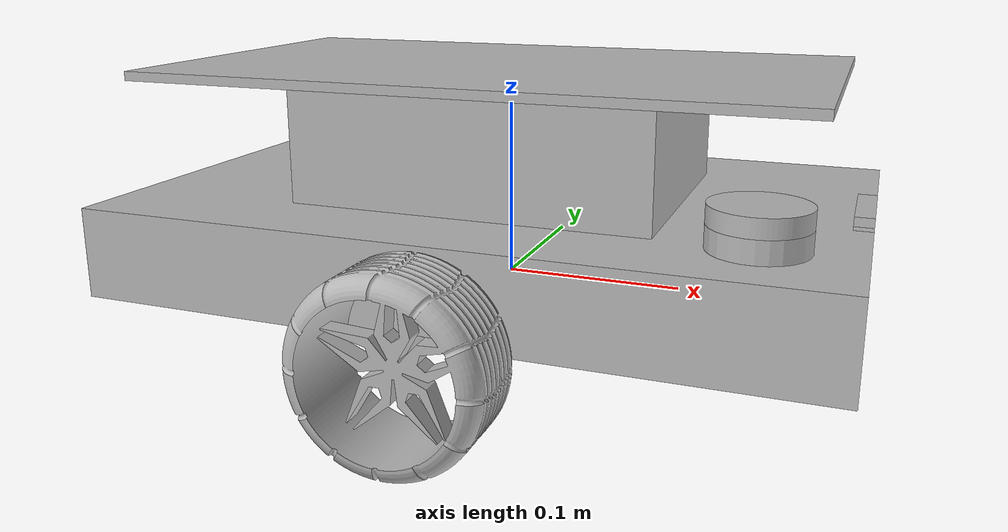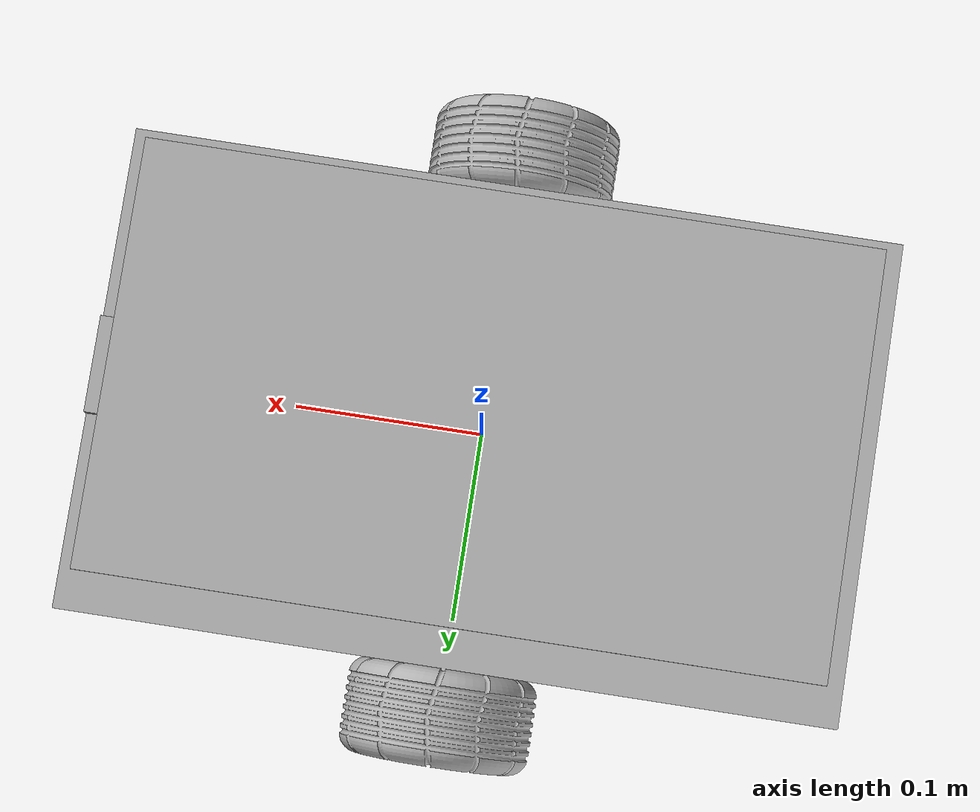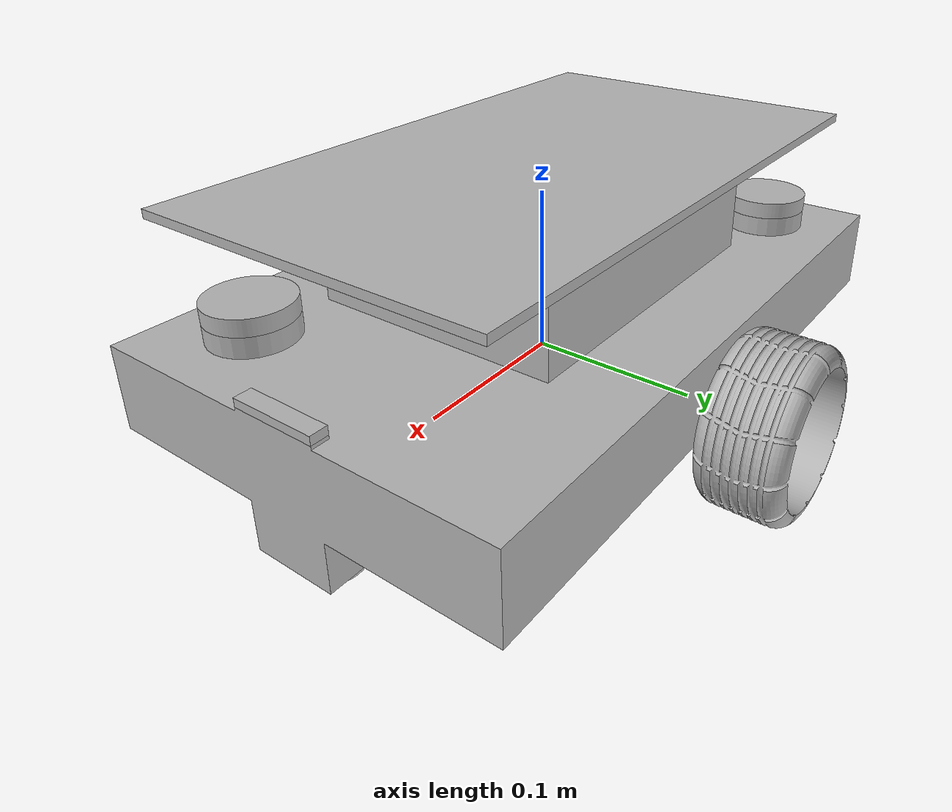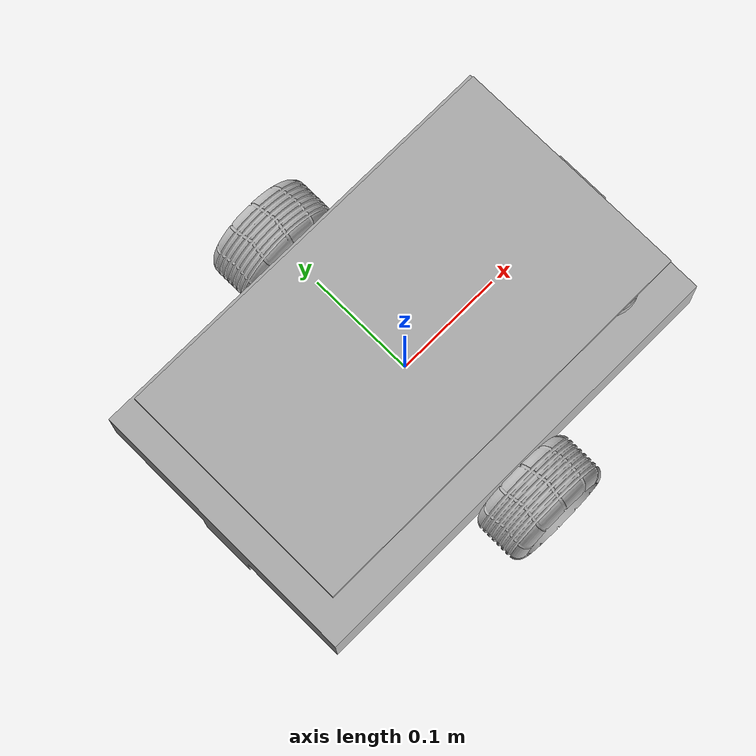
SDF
<?xml version="1.0" ?>
<sdf version="1.9">
  <model name="load_250_v33">
    <link name="base_link">
      <inertial>
        <mass>0.0001</mass>
        <inertia>
          <ixx>1e-09</ixx>
          <ixy>0</ixy>
          <ixz>0</ixz>
          <iyy>1e-09</iyy>
          <iyz>0</iyz>
          <izz>1e-09</izz>
        </inertia>
      </inertial>
    </link>

    <link name="froller_1">
      <pose relative_to="__model__">0.175 0.0 -0.03 0.0 -0.0 0.0</pose>
      <inertial>
        <mass>0.2630560248605853</mass>
        <inertia>
          <ixx>4.20889639776937e-05</ixx>
          <ixy>0.0</ixy>
          <ixz>2.168404344971009e-19</ixz>
          <iyy>4.20889639776937e-05</iyy>
          <iyz>0.0</iyz>
          <izz>4.20889639776937e-05</izz>
        </inertia>
      </inertial>
      <visual name="froller_1__froller_visual">
        <geometry>
          <mesh>
            <scale>0.01 0.01 0.01</scale>
            <uri>meshes/froller_1/froller_visual.obj</uri>
          </mesh>
        </geometry>
      </visual>
      <collision name="froller_1__froller_collision">
        <pose relative_to="__model__">0.175 0.0 -0.03 -0.0 -1.5707963267948966 0</pose>
        <geometry>
          <sphere>
            <radius>0.02</radius>
          </sphere>
        </geometry>
        <surface>
          <friction>
            <torsional>
              <coefficient>0.0</coefficient>
            </torsional>
            <ode>
              <mu>0.0</mu>
              <mu2>0.0</mu2>
            </ode>
            <bullet>
              <friction>0.0</friction>
              <friction2>0.0</friction2>
              <rolling_friction>0.0</rolling_friction>
            </bullet>
          </friction>
        </surface>
      </collision>
    </link>
    <link name="imu_1">
      <pose relative_to="__model__">0.0 0.0 0.025 0.0 -0.0 0.0</pose>
      <inertial>
        <pose>0.0 0.0 0.010000000000000002 0.0 -0.0 0.0</pose>
        <mass>0.2355</mass>
        <inertia>
          <ixx>2.551249999999995e-05</ixx>
          <ixy>0.0</ixy>
          <ixz>0.0</ixz>
          <iyy>5.6912499999999954e-05</iyy>
          <iyz>0.0</iyz>
          <izz>6.672499999999997e-05</izz>
        </inertia>
      </inertial>
      <visual name="imu_1__imu_visual">
        <geometry>
          <mesh>
            <scale>0.01 0.01 0.01</scale>
            <uri>meshes/imu_1/imu_visual.obj</uri>
          </mesh>
        </geometry>
      </visual>
      <collision name="imu_1__imu_collision">
        <pose relative_to="__model__">0.0 0.0 0.035 -0.0 -1.5707963267948966 0</pose>
        <geometry>
          <box>
            <size>0.02 0.03 0.05</size>
          </box>
        </geometry>
      </collision>
    </link>
    <link name="broller_1">
      <pose relative_to="__model__">-0.175 0.0 -0.03 0.0 -0.0 0.0</pose>
      <inertial>
        <mass>0.2630560248605853</mass>
        <inertia>
          <ixx>4.20889639776937e-05</ixx>
          <ixy>0.0</ixy>
          <ixz>-2.168404344971009e-19</ixz>
          <iyy>4.20889639776937e-05</iyy>
          <iyz>0.0</iyz>
          <izz>4.20889639776937e-05</izz>
        </inertia>
      </inertial>
      <visual name="broller_1__broller_visual">
        <geometry>
          <mesh>
            <scale>0.01 0.01 0.01</scale>
            <uri>meshes/broller_1/broller_visual.obj</uri>
          </mesh>
        </geometry>
      </visual>
      <collision name="broller_1__broller_collision">
        <pose relative_to="__model__">-0.175 0.0 -0.03 -0.0 -1.5707963267948966 0</pose>
        <geometry>
          <box>
            <size>0.04 0.04 0.04</size>
          </box>
        </geometry>
        <surface>
          <friction>
            <torsional>
              <coefficient>0.0</coefficient>
            </torsional>
            <ode>
              <mu>0.0</mu>
              <mu2>0.0</mu2>
            </ode>
            <bullet>
              <friction>0.0</friction>
              <friction2>0.0</friction2>
              <rolling_friction>0.0</rolling_friction>
            </bullet>
          </friction>
        </surface>
      </collision>
    </link>
    <link name="platform_1">
      <pose relative_to="__model__">0.0 0.0 0.055 0.0 -0.0 6.123233995736766e-17</pose>
      <inertial>
        <pose>1.8256230444553304e-11 0.0 0.039618976470643864 0.0 -0.0 -6.123233995736766e-17</pose>
        <mass>11.533219999999998</mass>
        <inertia>
          <ixx>0.024765548801522416</ixx>
          <ixy>1.684427072887525e-11</ixy>
          <ixz>-5.238784181586978e-12</ixz>
          <iyy>0.05554422130152241</iyy>
          <iyz>1.448607473321317e-10</iyz>
          <izz>0.06986293283333335</izz>
        </inertia>
      </inertial>
      <visual name="platform_1__platform_visual">
        <geometry>
          <mesh>
            <scale>0.01 0.01 0.01</scale>
            <uri>meshes/platform_1/platform_visual.obj</uri>
          </mesh>
        </geometry>
      </visual>
      <collision name="platform_1__platform_collision">
        <pose relative_to="__model__">0.0 0.0 0.08850000629013424 -0.0 -1.5707963267948966 0</pose>
        <geometry>
          <box>
            <size>0.06700001258026848 0.21000000000000005 0.360000025160537</size>
          </box>
        </geometry>
      </collision>
    </link>
    <link name="camera_1">
      <pose relative_to="__model__">0.195 0.0 0.05199999999999999 0.0 -0.0 0.0</pose>
      <inertial>
        <pose>0.0 0.0 0.0025000000000000022 0.0 -0.0 0.0</pose>
        <mass>0.019624999999999997</mass>
        <inertia>
          <ixx>4.129427083333333e-06</ixx>
          <ixy>0.0</ixy>
          <ixz>0.0</ixz>
          <iyy>2.0442708333317638e-07</iyy>
          <iyz>0.0</iyz>
          <izz>4.252083333333343e-06</izz>
        </inertia>
      </inertial>
      <visual name="camera_1__camera_visual">
        <geometry>
          <mesh>
            <scale>0.01 0.01 0.01</scale>
            <uri>meshes/camera_1/camera_visual.obj</uri>
          </mesh>
        </geometry>
      </visual>
      <collision name="camera_1__camera_collision">
        <pose relative_to="__model__">0.195 0.0 0.05449999999999999 -0.0 -1.5707963267948966 0</pose>
        <geometry>
          <box>
            <size>0.005 0.05 0.01</size>
          </box>
        </geometry>
      </collision>
    </link>
    <link name="rwheel_1">
      <pose relative_to="__model__">0.0 -0.145 0.0 0.0 -0.0 1.0145104319789719e-51</pose>
      <inertial>
        <pose>-3.872152868763962e-07 -0.0050002387848986085 -5.898795480966115e-06 0.0 -0.0 -1.0145104319789719e-51</pose>
        <mass>1.0452977986041356</mass>
        <inertia>
          <ixx>0.0011276214981046917</ixx>
          <ixy>-3.9380700690467983e-10</ixy>
          <ixz>6.493558753287392e-08</ixz>
          <iyy>0.0019158393483540905</iyy>
          <iyz>-5.260724932004131e-09</iyz>
          <izz>0.0011276094071435289</izz>
        </inertia>
      </inertial>
      <visual name="rwheel_1__rwheel_visual">
        <geometry>
          <mesh>
            <scale>0.01 0.01 0.01</scale>
            <uri>meshes/rwheel_1/rwheel_visual.obj</uri>
          </mesh>
        </geometry>
      </visual>
      <collision name="rwheel_1__rwheel_collision">
        <pose relative_to="__model__">0.0 -0.15 0.0 -0.0 -1.5707963267948966 0</pose>
        <geometry>
          <sphere>
            <radius>0.05</radius>
          </sphere>
        </geometry>
        <surface>
          <friction>
            <torsional>
              <coefficient>0.0</coefficient>
            </torsional>
            <ode>
              <mu>0.8</mu>
              <mu2>0.8</mu2>
            </ode>
            <bullet>
              <friction>0.8</friction>
              <friction2>0.8</friction2>
              <rolling_friction>0.01</rolling_friction>
            </bullet>
          </friction>
        </surface>
      </collision>
    </link>
    <link name="flidar_1">
      <pose relative_to="__model__">0.15 -0.075 0.06199999999999999 0.0 -0.0 0.0</pose>
      <inertial>
        <pose>2.7755575615628914e-17 -1.3877787807814457e-17 0.0049999999999999975 0.0 -0.0 0.0</pose>
        <mass>0.1541343895667492</mass>
        <inertia>
          <ixx>2.536795161619306e-05</ixx>
          <ixy>-2.168404344971009e-19</ixy>
          <ixz>4.336808689942018e-19</ixz>
          <iyy>2.536795161619306e-05</iyy>
          <iyz>0.0</iyz>
          <izz>4.816699673960718e-05</izz>
        </inertia>
      </inertial>
      <visual name="flidar_1__flidar_visual">
        <geometry>
          <mesh>
            <scale>0.01 0.01 0.01</scale>
            <uri>meshes/flidar_1/flidar_visual.obj</uri>
          </mesh>
        </geometry>
      </visual>
      <collision name="flidar_1__flidar_collision">
        <pose relative_to="__model__">0.15 -0.075 0.06699999999999999 -0.0 -1.5707963267948966 0</pose>
        <geometry>
          <box>
            <size>0.01 0.05 0.05</size>
          </box>
        </geometry>
      </collision>
      <sensor name='gpu_lidar_1' type='gpu_lidar'>
        <pose>0.0 0.0 0.05 0.0 -0.0 0.0</pose>
        <topic>scan</topic>
        <ignition_frame_id>load_250_v33/flidar_1</ignition_frame_id>
        <update_rate>10</update_rate>
        <lidar>
          <scan>
            <horizontal>
              <samples>270</samples>
              <resolution>1</resolution>
              <min_angle>-3.0</min_angle>
              <max_angle>1.396263</max_angle>
            </horizontal>
            <vertical>
              <samples>1</samples>
              <resolution>1</resolution>
              <min_angle>0.0</min_angle>
              <max_angle>0.0</max_angle>
            </vertical>
          </scan>
          <range>
            <min>0.3</min>
            <max>10.0</max>
            <resolution>0.01</resolution>
          </range>
        </lidar>
        <visualize>true</visualize>
      </sensor>
    </link>
    <link name="blidar_1">
      <pose relative_to="__model__">-0.15 0.075 0.06199999999999999 0.0 -0.0 0.0</pose>
      <inertial>
        <pose>0.0 0.0 0.0049999999999999975 0.0 -0.0 0.0</pose>
        <mass>0.15413438956674944</mass>
        <inertia>
          <ixx>2.536795161619306e-05</ixx>
          <ixy>0.0</ixy>
          <ixz>0.0</ixz>
          <iyy>2.5367951616194796e-05</iyy>
          <iyz>0.0</iyz>
          <izz>4.816699673960891e-05</izz>
        </inertia>
      </inertial>
      <visual name="blidar_1__blidar_visual">
        <geometry>
          <mesh>
            <scale>0.01 0.01 0.01</scale>
            <uri>meshes/blidar_1/blidar_visual.obj</uri>
          </mesh>
        </geometry>
      </visual>
      <collision name="blidar_1__blidar_collision">
        <pose relative_to="__model__">-0.15 0.075 0.06699999999999999 -0.0 -1.5707963267948966 0</pose>
        <geometry>
          <box>
            <size>0.01 0.05000000000000004 0.05000000000000002</size>
          </box>
        </geometry>
      </collision>
    </link>
    <link name="lwheel_1">
      <pose relative_to="__model__">0.0 0.145 0.0 -1.7931687772763235e-38 -0.0 -7.350647110176754e-36</pose>
      <inertial>
        <pose>-3.8721528699592e-07 0.0049997612151014 -5.898795481025863e-06 1.7931687772763235e-38 -1.3180950890745391e-73 7.350647110176754e-36</pose>
        <mass>1.0452977986041383</mass>
        <inertia>
          <ixx>0.0011276214981046986</ixx>
          <ixy>-3.938070089562201e-10</ixy>
          <ixz>6.493558752894794e-08</ixz>
          <iyy>0.0019158393483541083</iyy>
          <iyz>-5.260724930442202e-09</iyz>
          <izz>0.0011276094071435462</izz>
        </inertia>
      </inertial>
      <visual name="lwheel_1__lwheel_visual">
        <geometry>
          <mesh>
            <scale>0.01 0.01 0.01</scale>
            <uri>meshes/lwheel_1/lwheel_visual.obj</uri>
          </mesh>
        </geometry>
      </visual>
      <collision name="lwheel_1__lwheel_collision">
        <pose relative_to="__model__">0.0 0.15 0.0 -0.0 -1.5707963267948966 0</pose>
        <geometry>
          <sphere>
            <radius>0.05</radius>
          </sphere>
        </geometry>
        <surface>
          <friction>
            <torsional>
              <coefficient>0.0</coefficient>
            </torsional>
            <ode>
              <mu>0.8</mu>
              <mu2>0.8</mu2>
            </ode>
            <bullet>
              <friction>0.8</friction>
              <friction2>0.8</friction2>
              <rolling_friction>0.01</rolling_friction>
            </bullet>
          </friction>
        </surface>
      </collision>
    </link>
    <link name="main_body_1">
      <inertial>
        <pose>1.4462448403023515e-05 7.373652162995582e-17 0.03247477028451328 0.0 -0.0 0.0</pose>
        <mass>46.475965512430236</mass>
        <inertia>
          <ixx>0.2581412863064977</ixx>
          <ixy>0.004161628518543688</ixy>
          <ixz>-1.202255198884228e-05</ixz>
          <iyy>0.6234602310080568</iyy>
          <iyz>1.112902595487376e-16</iyz>
          <izz>0.820010763272547</izz>
        </inertia>
      </inertial>
      <visual name="main_body_1__main_body_visual">
        <geometry>
          <mesh>
            <scale>0.01 0.01 0.01</scale>
            <uri>meshes/main_body_1/main_body_visual.obj</uri>
          </mesh>
        </geometry>
      </visual>
      <collision name="main_body_1__main_body_collision">
        <pose relative_to="__model__">0.0 0.0 0.0425 -0.0 -1.5707963267948966 0</pose>
        <geometry>
          <box>
            <size>0.145 0.29 0.4</size>
          </box>
        </geometry>
      </collision>
    </link>
    <joint name="rigid_35" type="fixed">
      <pose relative_to="__model__">0.15 -0.075 0.06199999999999999 0.0 -0.0 0.0</pose>
      <parent>main_body_1</parent>
      <child>flidar_1</child>
      <axis/>
    </joint>
    <joint name="slider_36" type="prismatic">
      <pose relative_to="__model__">0.0 0.0 0.055 0.0 -0.0 0.0</pose>
      <parent>main_body_1</parent>
      <child>platform_1</child>
      <axis>
        <xyz expressed_in="__model__">0.0 0.0 1.0</xyz>
        <limit>
          <lower>0.0</lower>
          <upper>0.055</upper>
        </limit>
      </axis>
    </joint>
    <joint name="rigid_37" type="fixed">
      <pose relative_to="__model__">0.0 0.0 0.025 0.0 -0.0 0.0</pose>
      <parent>main_body_1</parent>
      <child>imu_1</child>
      <axis/>
    </joint>
    <joint name="rigid_38" type="fixed">
      <pose relative_to="__model__">-0.175 0.0 -0.03 0.0 -0.0 0.0</pose>
      <parent>main_body_1</parent>
      <child>broller_1</child>
      <axis/>
    </joint>
    <joint name="rigid_39" type="fixed">
      <pose relative_to="__model__">0.175 0.0 -0.03 0.0 -0.0 0.0</pose>
      <parent>main_body_1</parent>
      <child>froller_1</child>
      <axis/>
    </joint>
    <joint name="rigid_40" type="fixed">
      <pose relative_to="__model__">-0.15 0.075 0.06199999999999999 0.0 -0.0 0.0</pose>
      <parent>main_body_1</parent>
      <child>blidar_1</child>
      <axis/>
    </joint>
    <joint name="rigid_41" type="fixed">
      <pose relative_to="__model__">0.195 0.0 0.05199999999999999 0.0 -0.0 0.0</pose>
      <parent>main_body_1</parent>
      <child>camera_1</child>
      <axis/>
    </joint>
    <joint name="revolute_42" type="revolute">
      <pose relative_to="__model__">0.0 -0.145 0.0 0.0 -0.0 0.0</pose>
      <parent>main_body_1</parent>
      <child>rwheel_1</child>
      <axis>
        <xyz expressed_in="__model__">0.0 1.0 -0.0</xyz>
      </axis>
    </joint>
    <joint name="revolute_43" type="revolute">
      <pose relative_to="__model__">0.0 0.145 0.0 0.0 -0.0 0.0</pose>
      <parent>main_body_1</parent>
      <child>lwheel_1</child>
      <axis>
        <xyz expressed_in="__model__">0.0 1.0 -0.0</xyz>
      </axis>
    </joint>
    <joint name="base_link_joint" type="fixed">
      <parent>base_link</parent>
      <child>main_body_1</child>
      <axis/>
    </joint>
    <plugin
      filename="ignition-gazebo-diff-drive-system"
      name="ignition::gazebo::systems::DiffDrive">
      <left_joint>revolute_43</left_joint>
      <right_joint>revolute_42</right_joint>
      <wheel_separation>0.3</wheel_separation>
      <wheel_radius>0.05</wheel_radius>
      <odom_publish_frequency>30</odom_publish_frequency>
      <max_linear_acceleration>2</max_linear_acceleration>
      <min_linear_acceleration>-1</min_linear_acceleration>
      <max_angular_acceleration>4</max_angular_acceleration>
      <min_angular_acceleration>-4</min_angular_acceleration>
      <max_linear_velocity>2.0</max_linear_velocity>
      <min_linear_velocity>-0.5</min_linear_velocity>
      <max_angular_velocity>3</max_angular_velocity>
      <min_angular_velocity>-1</min_angular_velocity>
    </plugin>
  </model>
</sdf>
